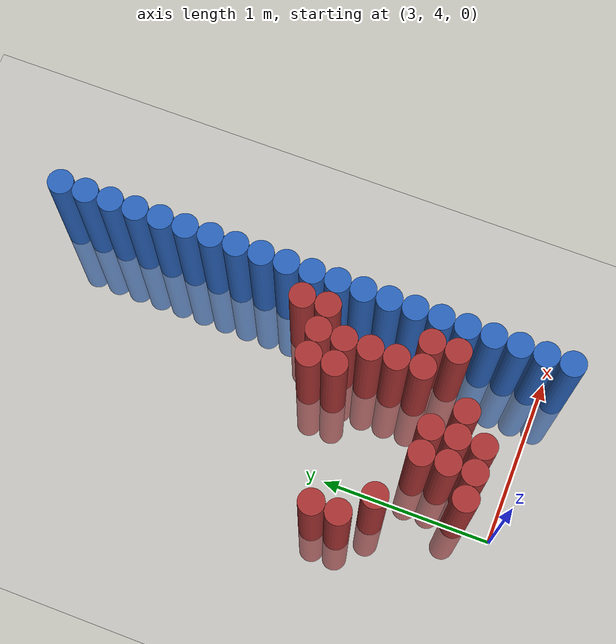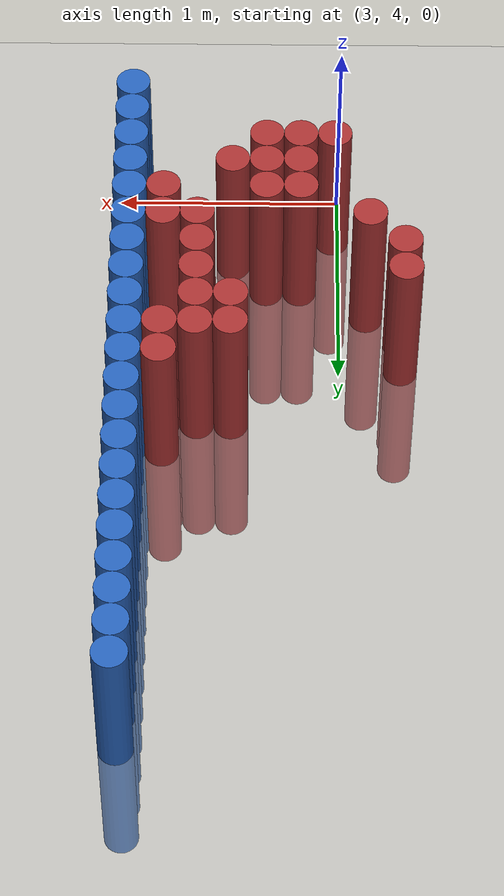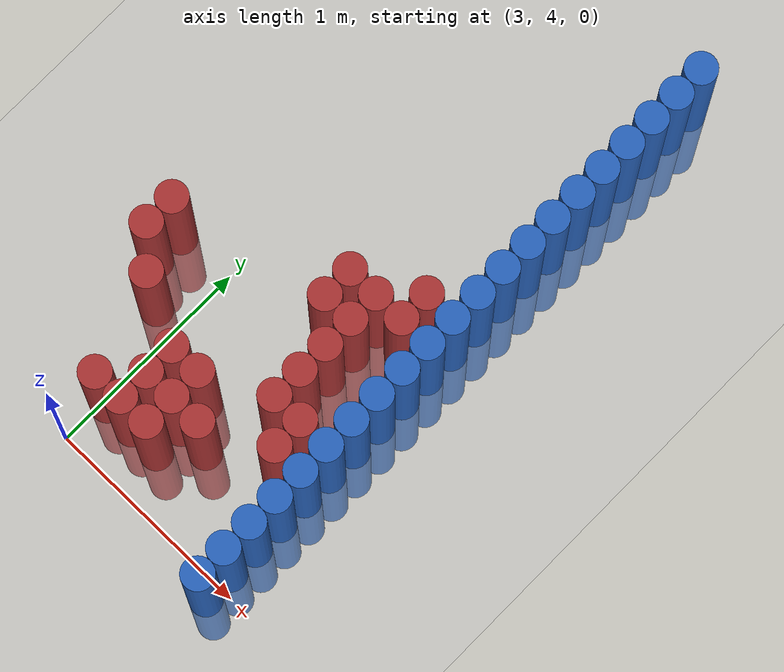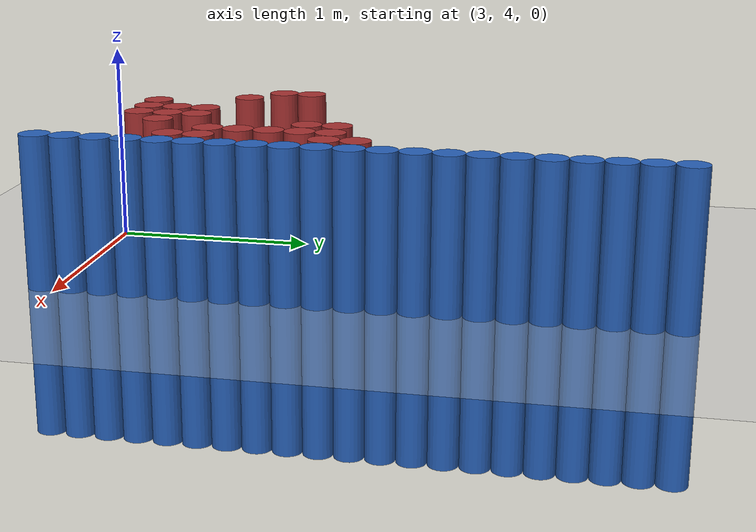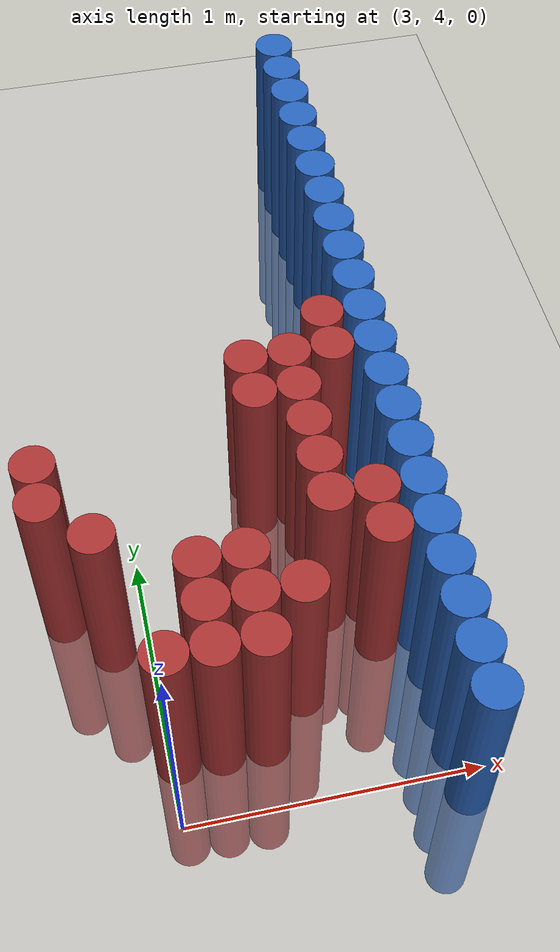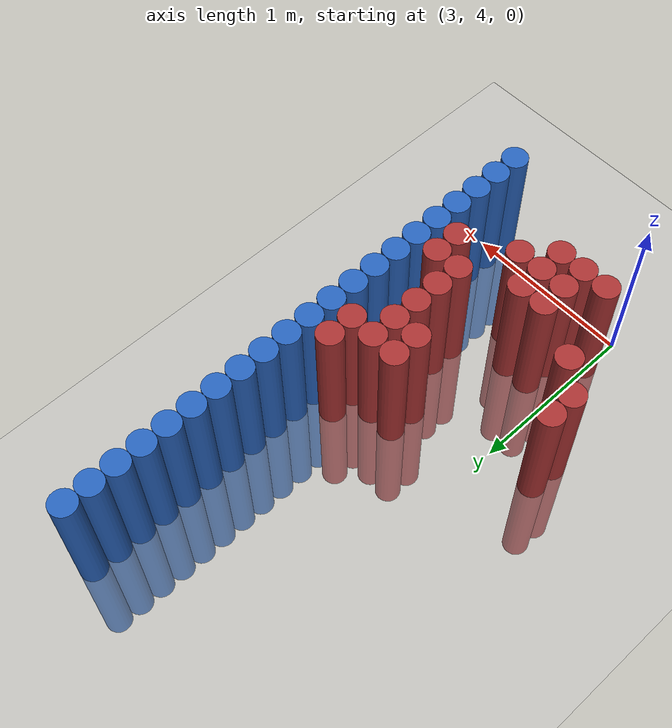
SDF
<sdf version="1.6">
 <world name="default">
  <model name="ground_plane">
   <static>1</static>
   <link name="link">
    <collision name="collision">
     <geometry><plane><normal>0 0 1</normal><size>100 100</size></plane></geometry>
     <surface><friction><ode><mu>100</mu><mu2>50</mu2></ode></friction></surface>
    </collision>
    <visual name="visual">
     <cast_shadows>0</cast_shadows>
     <geometry><plane><normal>0 0 1</normal><size>100 100</size></plane></geometry>
     <material>
      <script><uri>file://media/materials/scripts/gazebo.material</uri><name>Gazebo/Grey</name></script>
     </material>
    </visual>
   </link>
  </model>
  <model name="unit_cylinder_166">
   <static>1</static>
   <pose>3.925000 3.925000 0.000000 0.000000 0.000000 0.000000</pose>
   <link name="link">
    <inertial>
     <mass>1</mass>
     <inertia><ixx>0.145833</ixx><ixy>0</ixy><ixz>0</ixz><iyy>0.145833</iyy><iyz>0</iyz><izz>0.125</izz></inertia>
    </inertial>
    <collision name="collision">
     <geometry><cylinder><radius>0.075000</radius><length>1.5</length></cylinder></geometry>
    </collision>
    <visual name="visual">
     <geometry><cylinder><radius>0.075000</radius><length>1.5</length></cylinder></geometry>
     <material>
      <ambient>0.152000 0.379000 0.720000 1</ambient>
      <diffuse>0.152000 0.379000 0.720000 1</diffuse>
     </material>
     <material>
      <script><name>Gazebo/Grey</name><uri>file://media/materials/scripts/gazebo.material</uri></script>
     </material>
    </visual>
   </link>
  </model>
  <model name="unit_cylinder_168">
   <static>1</static>
   <pose>3.925000 4.075000 0.000000 0.000000 0.000000 0.000000</pose>
   <link name="link">
    <inertial>
     <mass>1</mass>
     <inertia><ixx>0.145833</ixx><ixy>0</ixy><ixz>0</ixz><iyy>0.145833</iyy><iyz>0</iyz><izz>0.125</izz></inertia>
    </inertial>
    <collision name="collision">
     <geometry><cylinder><radius>0.075000</radius><length>1.5</length></cylinder></geometry>
    </collision>
    <visual name="visual">
     <geometry><cylinder><radius>0.075000</radius><length>1.5</length></cylinder></geometry>
     <material>
      <ambient>0.152000 0.379000 0.720000 1</ambient>
      <diffuse>0.152000 0.379000 0.720000 1</diffuse>
     </material>
     <material>
      <script><name>Gazebo/Grey</name><uri>file://media/materials/scripts/gazebo.material</uri></script>
     </material>
    </visual>
   </link>
  </model>
  <model name="unit_cylinder_170">
   <static>1</static>
   <pose>3.925000 4.225000 0.000000 0.000000 0.000000 0.000000</pose>
   <link name="link">
    <inertial>
     <mass>1</mass>
     <inertia><ixx>0.145833</ixx><ixy>0</ixy><ixz>0</ixz><iyy>0.145833</iyy><iyz>0</iyz><izz>0.125</izz></inertia>
    </inertial>
    <collision name="collision">
     <geometry><cylinder><radius>0.075000</radius><length>1.5</length></cylinder></geometry>
    </collision>
    <visual name="visual">
     <geometry><cylinder><radius>0.075000</radius><length>1.5</length></cylinder></geometry>
     <material>
      <ambient>0.152000 0.379000 0.720000 1</ambient>
      <diffuse>0.152000 0.379000 0.720000 1</diffuse>
     </material>
     <material>
      <script><name>Gazebo/Grey</name><uri>file://media/materials/scripts/gazebo.material</uri></script>
     </material>
    </visual>
   </link>
  </model>
  <model name="unit_cylinder_172">
   <static>1</static>
   <pose>3.925000 4.375000 0.000000 0.000000 0.000000 0.000000</pose>
   <link name="link">
    <inertial>
     <mass>1</mass>
     <inertia><ixx>0.145833</ixx><ixy>0</ixy><ixz>0</ixz><iyy>0.145833</iyy><iyz>0</iyz><izz>0.125</izz></inertia>
    </inertial>
    <collision name="collision">
     <geometry><cylinder><radius>0.075000</radius><length>1.5</length></cylinder></geometry>
    </collision>
    <visual name="visual">
     <geometry><cylinder><radius>0.075000</radius><length>1.5</length></cylinder></geometry>
     <material>
      <ambient>0.152000 0.379000 0.720000 1</ambient>
      <diffuse>0.152000 0.379000 0.720000 1</diffuse>
     </material>
     <material>
      <script><name>Gazebo/Grey</name><uri>file://media/materials/scripts/gazebo.material</uri></script>
     </material>
    </visual>
   </link>
  </model>
  <model name="unit_cylinder_174">
   <static>1</static>
   <pose>3.925000 4.525000 0.000000 0.000000 0.000000 0.000000</pose>
   <link name="link">
    <inertial>
     <mass>1</mass>
     <inertia><ixx>0.145833</ixx><ixy>0</ixy><ixz>0</ixz><iyy>0.145833</iyy><iyz>0</iyz><izz>0.125</izz></inertia>
    </inertial>
    <collision name="collision">
     <geometry><cylinder><radius>0.075000</radius><length>1.5</length></cylinder></geometry>
    </collision>
    <visual name="visual">
     <geometry><cylinder><radius>0.075000</radius><length>1.5</length></cylinder></geometry>
     <material>
      <ambient>0.152000 0.379000 0.720000 1</ambient>
      <diffuse>0.152000 0.379000 0.720000 1</diffuse>
     </material>
     <material>
      <script><name>Gazebo/Grey</name><uri>file://media/materials/scripts/gazebo.material</uri></script>
     </material>
    </visual>
   </link>
  </model>
  <model name="unit_cylinder_176">
   <static>1</static>
   <pose>3.925000 4.675000 0.000000 0.000000 0.000000 0.000000</pose>
   <link name="link">
    <inertial>
     <mass>1</mass>
     <inertia><ixx>0.145833</ixx><ixy>0</ixy><ixz>0</ixz><iyy>0.145833</iyy><iyz>0</iyz><izz>0.125</izz></inertia>
    </inertial>
    <collision name="collision">
     <geometry><cylinder><radius>0.075000</radius><length>1.5</length></cylinder></geometry>
    </collision>
    <visual name="visual">
     <geometry><cylinder><radius>0.075000</radius><length>1.5</length></cylinder></geometry>
     <material>
      <ambient>0.152000 0.379000 0.720000 1</ambient>
      <diffuse>0.152000 0.379000 0.720000 1</diffuse>
     </material>
     <material>
      <script><name>Gazebo/Grey</name><uri>file://media/materials/scripts/gazebo.material</uri></script>
     </material>
    </visual>
   </link>
  </model>
  <model name="unit_cylinder_178">
   <static>1</static>
   <pose>3.925000 4.825000 0.000000 0.000000 0.000000 0.000000</pose>
   <link name="link">
    <inertial>
     <mass>1</mass>
     <inertia><ixx>0.145833</ixx><ixy>0</ixy><ixz>0</ixz><iyy>0.145833</iyy><iyz>0</iyz><izz>0.125</izz></inertia>
    </inertial>
    <collision name="collision">
     <geometry><cylinder><radius>0.075000</radius><length>1.5</length></cylinder></geometry>
    </collision>
    <visual name="visual">
     <geometry><cylinder><radius>0.075000</radius><length>1.5</length></cylinder></geometry>
     <material>
      <ambient>0.152000 0.379000 0.720000 1</ambient>
      <diffuse>0.152000 0.379000 0.720000 1</diffuse>
     </material>
     <material>
      <script><name>Gazebo/Grey</name><uri>file://media/materials/scripts/gazebo.material</uri></script>
     </material>
    </visual>
   </link>
  </model>
  <model name="unit_cylinder_180">
   <static>1</static>
   <pose>3.925000 4.975000 0.000000 0.000000 0.000000 0.000000</pose>
   <link name="link">
    <inertial>
     <mass>1</mass>
     <inertia><ixx>0.145833</ixx><ixy>0</ixy><ixz>0</ixz><iyy>0.145833</iyy><iyz>0</iyz><izz>0.125</izz></inertia>
    </inertial>
    <collision name="collision">
     <geometry><cylinder><radius>0.075000</radius><length>1.5</length></cylinder></geometry>
    </collision>
    <visual name="visual">
     <geometry><cylinder><radius>0.075000</radius><length>1.5</length></cylinder></geometry>
     <material>
      <ambient>0.152000 0.379000 0.720000 1</ambient>
      <diffuse>0.152000 0.379000 0.720000 1</diffuse>
     </material>
     <material>
      <script><name>Gazebo/Grey</name><uri>file://media/materials/scripts/gazebo.material</uri></script>
     </material>
    </visual>
   </link>
  </model>
  <model name="unit_cylinder_182">
   <static>1</static>
   <pose>3.925000 5.125000 0.000000 0.000000 0.000000 0.000000</pose>
   <link name="link">
    <inertial>
     <mass>1</mass>
     <inertia><ixx>0.145833</ixx><ixy>0</ixy><ixz>0</ixz><iyy>0.145833</iyy><iyz>0</iyz><izz>0.125</izz></inertia>
    </inertial>
    <collision name="collision">
     <geometry><cylinder><radius>0.075000</radius><length>1.5</length></cylinder></geometry>
    </collision>
    <visual name="visual">
     <geometry><cylinder><radius>0.075000</radius><length>1.5</length></cylinder></geometry>
     <material>
      <ambient>0.152000 0.379000 0.720000 1</ambient>
      <diffuse>0.152000 0.379000 0.720000 1</diffuse>
     </material>
     <material>
      <script><name>Gazebo/Grey</name><uri>file://media/materials/scripts/gazebo.material</uri></script>
     </material>
    </visual>
   </link>
  </model>
  <model name="unit_cylinder_184">
   <static>1</static>
   <pose>3.925000 5.275000 0.000000 0.000000 0.000000 0.000000</pose>
   <link name="link">
    <inertial>
     <mass>1</mass>
     <inertia><ixx>0.145833</ixx><ixy>0</ixy><ixz>0</ixz><iyy>0.145833</iyy><iyz>0</iyz><izz>0.125</izz></inertia>
    </inertial>
    <collision name="collision">
     <geometry><cylinder><radius>0.075000</radius><length>1.5</length></cylinder></geometry>
    </collision>
    <visual name="visual">
     <geometry><cylinder><radius>0.075000</radius><length>1.5</length></cylinder></geometry>
     <material>
      <ambient>0.152000 0.379000 0.720000 1</ambient>
      <diffuse>0.152000 0.379000 0.720000 1</diffuse>
     </material>
     <material>
      <script><name>Gazebo/Grey</name><uri>file://media/materials/scripts/gazebo.material</uri></script>
     </material>
    </visual>
   </link>
  </model>
  <model name="unit_cylinder_186">
   <static>1</static>
   <pose>3.925000 5.425000 0.000000 0.000000 0.000000 0.000000</pose>
   <link name="link">
    <inertial>
     <mass>1</mass>
     <inertia><ixx>0.145833</ixx><ixy>0</ixy><ixz>0</ixz><iyy>0.145833</iyy><iyz>0</iyz><izz>0.125</izz></inertia>
    </inertial>
    <collision name="collision">
     <geometry><cylinder><radius>0.075000</radius><length>1.5</length></cylinder></geometry>
    </collision>
    <visual name="visual">
     <geometry><cylinder><radius>0.075000</radius><length>1.5</length></cylinder></geometry>
     <material>
      <ambient>0.152000 0.379000 0.720000 1</ambient>
      <diffuse>0.152000 0.379000 0.720000 1</diffuse>
     </material>
     <material>
      <script><name>Gazebo/Grey</name><uri>file://media/materials/scripts/gazebo.material</uri></script>
     </material>
    </visual>
   </link>
  </model>
  <model name="unit_cylinder_188">
   <static>1</static>
   <pose>3.925000 5.575000 0.000000 0.000000 0.000000 0.000000</pose>
   <link name="link">
    <inertial>
     <mass>1</mass>
     <inertia><ixx>0.145833</ixx><ixy>0</ixy><ixz>0</ixz><iyy>0.145833</iyy><iyz>0</iyz><izz>0.125</izz></inertia>
    </inertial>
    <collision name="collision">
     <geometry><cylinder><radius>0.075000</radius><length>1.5</length></cylinder></geometry>
    </collision>
    <visual name="visual">
     <geometry><cylinder><radius>0.075000</radius><length>1.5</length></cylinder></geometry>
     <material>
      <ambient>0.152000 0.379000 0.720000 1</ambient>
      <diffuse>0.152000 0.379000 0.720000 1</diffuse>
     </material>
     <material>
      <script><name>Gazebo/Grey</name><uri>file://media/materials/scripts/gazebo.material</uri></script>
     </material>
    </visual>
   </link>
  </model>
  <model name="unit_cylinder_190">
   <static>1</static>
   <pose>3.925000 5.725000 0.000000 0.000000 0.000000 0.000000</pose>
   <link name="link">
    <inertial>
     <mass>1</mass>
     <inertia><ixx>0.145833</ixx><ixy>0</ixy><ixz>0</ixz><iyy>0.145833</iyy><iyz>0</iyz><izz>0.125</izz></inertia>
    </inertial>
    <collision name="collision">
     <geometry><cylinder><radius>0.075000</radius><length>1.5</length></cylinder></geometry>
    </collision>
    <visual name="visual">
     <geometry><cylinder><radius>0.075000</radius><length>1.5</length></cylinder></geometry>
     <material>
      <ambient>0.152000 0.379000 0.720000 1</ambient>
      <diffuse>0.152000 0.379000 0.720000 1</diffuse>
     </material>
     <material>
      <script><name>Gazebo/Grey</name><uri>file://media/materials/scripts/gazebo.material</uri></script>
     </material>
    </visual>
   </link>
  </model>
  <model name="unit_cylinder_192">
   <static>1</static>
   <pose>3.925000 5.875000 0.000000 0.000000 0.000000 0.000000</pose>
   <link name="link">
    <inertial>
     <mass>1</mass>
     <inertia><ixx>0.145833</ixx><ixy>0</ixy><ixz>0</ixz><iyy>0.145833</iyy><iyz>0</iyz><izz>0.125</izz></inertia>
    </inertial>
    <collision name="collision">
     <geometry><cylinder><radius>0.075000</radius><length>1.5</length></cylinder></geometry>
    </collision>
    <visual name="visual">
     <geometry><cylinder><radius>0.075000</radius><length>1.5</length></cylinder></geometry>
     <material>
      <ambient>0.152000 0.379000 0.720000 1</ambient>
      <diffuse>0.152000 0.379000 0.720000 1</diffuse>
     </material>
     <material>
      <script><name>Gazebo/Grey</name><uri>file://media/materials/scripts/gazebo.material</uri></script>
     </material>
    </visual>
   </link>
  </model>
  <model name="unit_cylinder_194">
   <static>1</static>
   <pose>3.925000 6.025000 0.000000 0.000000 0.000000 0.000000</pose>
   <link name="link">
    <inertial>
     <mass>1</mass>
     <inertia><ixx>0.145833</ixx><ixy>0</ixy><ixz>0</ixz><iyy>0.145833</iyy><iyz>0</iyz><izz>0.125</izz></inertia>
    </inertial>
    <collision name="collision">
     <geometry><cylinder><radius>0.075000</radius><length>1.5</length></cylinder></geometry>
    </collision>
    <visual name="visual">
     <geometry><cylinder><radius>0.075000</radius><length>1.5</length></cylinder></geometry>
     <material>
      <ambient>0.152000 0.379000 0.720000 1</ambient>
      <diffuse>0.152000 0.379000 0.720000 1</diffuse>
     </material>
     <material>
      <script><name>Gazebo/Grey</name><uri>file://media/materials/scripts/gazebo.material</uri></script>
     </material>
    </visual>
   </link>
  </model>
  <model name="unit_cylinder_196">
   <static>1</static>
   <pose>3.925000 6.175000 0.000000 0.000000 0.000000 0.000000</pose>
   <link name="link">
    <inertial>
     <mass>1</mass>
     <inertia><ixx>0.145833</ixx><ixy>0</ixy><ixz>0</ixz><iyy>0.145833</iyy><iyz>0</iyz><izz>0.125</izz></inertia>
    </inertial>
    <collision name="collision">
     <geometry><cylinder><radius>0.075000</radius><length>1.5</length></cylinder></geometry>
    </collision>
    <visual name="visual">
     <geometry><cylinder><radius>0.075000</radius><length>1.5</length></cylinder></geometry>
     <material>
      <ambient>0.152000 0.379000 0.720000 1</ambient>
      <diffuse>0.152000 0.379000 0.720000 1</diffuse>
     </material>
     <material>
      <script><name>Gazebo/Grey</name><uri>file://media/materials/scripts/gazebo.material</uri></script>
     </material>
    </visual>
   </link>
  </model>
  <model name="unit_cylinder_198">
   <static>1</static>
   <pose>3.925000 6.325000 0.000000 0.000000 0.000000 0.000000</pose>
   <link name="link">
    <inertial>
     <mass>1</mass>
     <inertia><ixx>0.145833</ixx><ixy>0</ixy><ixz>0</ixz><iyy>0.145833</iyy><iyz>0</iyz><izz>0.125</izz></inertia>
    </inertial>
    <collision name="collision">
     <geometry><cylinder><radius>0.075000</radius><length>1.5</length></cylinder></geometry>
    </collision>
    <visual name="visual">
     <geometry><cylinder><radius>0.075000</radius><length>1.5</length></cylinder></geometry>
     <material>
      <ambient>0.152000 0.379000 0.720000 1</ambient>
      <diffuse>0.152000 0.379000 0.720000 1</diffuse>
     </material>
     <material>
      <script><name>Gazebo/Grey</name><uri>file://media/materials/scripts/gazebo.material</uri></script>
     </material>
    </visual>
   </link>
  </model>
  <model name="unit_cylinder_200">
   <static>1</static>
   <pose>3.925000 6.475000 0.000000 0.000000 0.000000 0.000000</pose>
   <link name="link">
    <inertial>
     <mass>1</mass>
     <inertia><ixx>0.145833</ixx><ixy>0</ixy><ixz>0</ixz><iyy>0.145833</iyy><iyz>0</iyz><izz>0.125</izz></inertia>
    </inertial>
    <collision name="collision">
     <geometry><cylinder><radius>0.075000</radius><length>1.5</length></cylinder></geometry>
    </collision>
    <visual name="visual">
     <geometry><cylinder><radius>0.075000</radius><length>1.5</length></cylinder></geometry>
     <material>
      <ambient>0.152000 0.379000 0.720000 1</ambient>
      <diffuse>0.152000 0.379000 0.720000 1</diffuse>
     </material>
     <material>
      <script><name>Gazebo/Grey</name><uri>file://media/materials/scripts/gazebo.material</uri></script>
     </material>
    </visual>
   </link>
  </model>
  <model name="unit_cylinder_202">
   <static>1</static>
   <pose>3.925000 6.625000 0.000000 0.000000 0.000000 0.000000</pose>
   <link name="link">
    <inertial>
     <mass>1</mass>
     <inertia><ixx>0.145833</ixx><ixy>0</ixy><ixz>0</ixz><iyy>0.145833</iyy><iyz>0</iyz><izz>0.125</izz></inertia>
    </inertial>
    <collision name="collision">
     <geometry><cylinder><radius>0.075000</radius><length>1.5</length></cylinder></geometry>
    </collision>
    <visual name="visual">
     <geometry><cylinder><radius>0.075000</radius><length>1.5</length></cylinder></geometry>
     <material>
      <ambient>0.152000 0.379000 0.720000 1</ambient>
      <diffuse>0.152000 0.379000 0.720000 1</diffuse>
     </material>
     <material>
      <script><name>Gazebo/Grey</name><uri>file://media/materials/scripts/gazebo.material</uri></script>
     </material>
    </visual>
   </link>
  </model>
  <model name="unit_cylinder_204">
   <static>1</static>
   <pose>3.925000 6.775000 0.000000 0.000000 0.000000 0.000000</pose>
   <link name="link">
    <inertial>
     <mass>1</mass>
     <inertia><ixx>0.145833</ixx><ixy>0</ixy><ixz>0</ixz><iyy>0.145833</iyy><iyz>0</iyz><izz>0.125</izz></inertia>
    </inertial>
    <collision name="collision">
     <geometry><cylinder><radius>0.075000</radius><length>1.5</length></cylinder></geometry>
    </collision>
    <visual name="visual">
     <geometry><cylinder><radius>0.075000</radius><length>1.5</length></cylinder></geometry>
     <material>
      <ambient>0.152000 0.379000 0.720000 1</ambient>
      <diffuse>0.152000 0.379000 0.720000 1</diffuse>
     </material>
     <material>
      <script><name>Gazebo/Grey</name><uri>file://media/materials/scripts/gazebo.material</uri></script>
     </material>
    </visual>
   </link>
  </model>
  <model name="unit_cylinder_206">
   <static>1</static>
   <pose>3.925000 6.925000 0.000000 0.000000 0.000000 0.000000</pose>
   <link name="link">
    <inertial>
     <mass>1</mass>
     <inertia><ixx>0.145833</ixx><ixy>0</ixy><ixz>0</ixz><iyy>0.145833</iyy><iyz>0</iyz><izz>0.125</izz></inertia>
    </inertial>
    <collision name="collision">
     <geometry><cylinder><radius>0.075000</radius><length>1.5</length></cylinder></geometry>
    </collision>
    <visual name="visual">
     <geometry><cylinder><radius>0.075000</radius><length>1.5</length></cylinder></geometry>
     <material>
      <ambient>0.152000 0.379000 0.720000 1</ambient>
      <diffuse>0.152000 0.379000 0.720000 1</diffuse>
     </material>
     <material>
      <script><name>Gazebo/Grey</name><uri>file://media/materials/scripts/gazebo.material</uri></script>
     </material>
    </visual>
   </link>
  </model>
  <model name="unit_cylinder_431">
   <static>1</static>
   <pose>2.725000 4.825000 0.000000 0.000000 0.000000 0.000000</pose>
   <link name="link">
    <inertial>
     <mass>1</mass>
     <inertia><ixx>0.145833</ixx><ixy>0</ixy><ixz>0</ixz><iyy>0.145833</iyy><iyz>0</iyz><izz>0.125</izz></inertia>
    </inertial>
    <collision name="collision">
     <geometry><cylinder><radius>0.075000</radius><length>1.5</length></cylinder></geometry>
    </collision>
    <visual name="visual">
     <geometry><cylinder><radius>0.075000</radius><length>1.5</length></cylinder></geometry>
     <material>
      <ambient>0.648000 0.192000 0.192000 1</ambient>
      <diffuse>0.648000 0.192000 0.192000 1</diffuse>
     </material>
     <material>
      <script><name>Gazebo/Grey</name><uri>file://media/materials/scripts/gazebo.material</uri></script>
     </material>
    </visual>
   </link>
  </model>
  <model name="unit_cylinder_432">
   <static>1</static>
   <pose>2.725000 4.975000 0.000000 0.000000 0.000000 0.000000</pose>
   <link name="link">
    <inertial>
     <mass>1</mass>
     <inertia><ixx>0.145833</ixx><ixy>0</ixy><ixz>0</ixz><iyy>0.145833</iyy><iyz>0</iyz><izz>0.125</izz></inertia>
    </inertial>
    <collision name="collision">
     <geometry><cylinder><radius>0.075000</radius><length>1.5</length></cylinder></geometry>
    </collision>
    <visual name="visual">
     <geometry><cylinder><radius>0.075000</radius><length>1.5</length></cylinder></geometry>
     <material>
      <ambient>0.648000 0.192000 0.192000 1</ambient>
      <diffuse>0.648000 0.192000 0.192000 1</diffuse>
     </material>
     <material>
      <script><name>Gazebo/Grey</name><uri>file://media/materials/scripts/gazebo.material</uri></script>
     </material>
    </visual>
   </link>
  </model>
  <model name="unit_cylinder_434">
   <static>1</static>
   <pose>2.875000 4.675000 0.000000 0.000000 0.000000 0.000000</pose>
   <link name="link">
    <inertial>
     <mass>1</mass>
     <inertia><ixx>0.145833</ixx><ixy>0</ixy><ixz>0</ixz><iyy>0.145833</iyy><iyz>0</iyz><izz>0.125</izz></inertia>
    </inertial>
    <collision name="collision">
     <geometry><cylinder><radius>0.075000</radius><length>1.5</length></cylinder></geometry>
    </collision>
    <visual name="visual">
     <geometry><cylinder><radius>0.075000</radius><length>1.5</length></cylinder></geometry>
     <material>
      <ambient>0.648000 0.192000 0.192000 1</ambient>
      <diffuse>0.648000 0.192000 0.192000 1</diffuse>
     </material>
     <material>
      <script><name>Gazebo/Grey</name><uri>file://media/materials/scripts/gazebo.material</uri></script>
     </material>
    </visual>
   </link>
  </model>
  <model name="unit_cylinder_437">
   <static>1</static>
   <pose>3.025000 4.225000 0.000000 0.000000 0.000000 0.000000</pose>
   <link name="link">
    <inertial>
     <mass>1</mass>
     <inertia><ixx>0.145833</ixx><ixy>0</ixy><ixz>0</ixz><iyy>0.145833</iyy><iyz>0</iyz><izz>0.125</izz></inertia>
    </inertial>
    <collision name="collision">
     <geometry><cylinder><radius>0.075000</radius><length>1.5</length></cylinder></geometry>
    </collision>
    <visual name="visual">
     <geometry><cylinder><radius>0.075000</radius><length>1.5</length></cylinder></geometry>
     <material>
      <ambient>0.648000 0.192000 0.192000 1</ambient>
      <diffuse>0.648000 0.192000 0.192000 1</diffuse>
     </material>
     <material>
      <script><name>Gazebo/Grey</name><uri>file://media/materials/scripts/gazebo.material</uri></script>
     </material>
    </visual>
   </link>
  </model>
  <model name="unit_cylinder_438">
   <static>1</static>
   <pose>3.175000 4.225000 0.000000 0.000000 0.000000 0.000000</pose>
   <link name="link">
    <inertial>
     <mass>1</mass>
     <inertia><ixx>0.145833</ixx><ixy>0</ixy><ixz>0</ixz><iyy>0.145833</iyy><iyz>0</iyz><izz>0.125</izz></inertia>
    </inertial>
    <collision name="collision">
     <geometry><cylinder><radius>0.075000</radius><length>1.5</length></cylinder></geometry>
    </collision>
    <visual name="visual">
     <geometry><cylinder><radius>0.075000</radius><length>1.5</length></cylinder></geometry>
     <material>
      <ambient>0.648000 0.192000 0.192000 1</ambient>
      <diffuse>0.648000 0.192000 0.192000 1</diffuse>
     </material>
     <material>
      <script><name>Gazebo/Grey</name><uri>file://media/materials/scripts/gazebo.material</uri></script>
     </material>
    </visual>
   </link>
  </model>
  <model name="unit_cylinder_439">
   <static>1</static>
   <pose>3.175000 4.375000 0.000000 0.000000 0.000000 0.000000</pose>
   <link name="link">
    <inertial>
     <mass>1</mass>
     <inertia><ixx>0.145833</ixx><ixy>0</ixy><ixz>0</ixz><iyy>0.145833</iyy><iyz>0</iyz><izz>0.125</izz></inertia>
    </inertial>
    <collision name="collision">
     <geometry><cylinder><radius>0.075000</radius><length>1.5</length></cylinder></geometry>
    </collision>
    <visual name="visual">
     <geometry><cylinder><radius>0.075000</radius><length>1.5</length></cylinder></geometry>
     <material>
      <ambient>0.648000 0.192000 0.192000 1</ambient>
      <diffuse>0.648000 0.192000 0.192000 1</diffuse>
     </material>
     <material>
      <script><name>Gazebo/Grey</name><uri>file://media/materials/scripts/gazebo.material</uri></script>
     </material>
    </visual>
   </link>
  </model>
  <model name="unit_cylinder_440">
   <static>1</static>
   <pose>3.175000 4.525000 0.000000 0.000000 0.000000 0.000000</pose>
   <link name="link">
    <inertial>
     <mass>1</mass>
     <inertia><ixx>0.145833</ixx><ixy>0</ixy><ixz>0</ixz><iyy>0.145833</iyy><iyz>0</iyz><izz>0.125</izz></inertia>
    </inertial>
    <collision name="collision">
     <geometry><cylinder><radius>0.075000</radius><length>1.5</length></cylinder></geometry>
    </collision>
    <visual name="visual">
     <geometry><cylinder><radius>0.075000</radius><length>1.5</length></cylinder></geometry>
     <material>
      <ambient>0.648000 0.192000 0.192000 1</ambient>
      <diffuse>0.648000 0.192000 0.192000 1</diffuse>
     </material>
     <material>
      <script><name>Gazebo/Grey</name><uri>file://media/materials/scripts/gazebo.material</uri></script>
     </material>
    </visual>
   </link>
  </model>
  <model name="unit_cylinder_443">
   <static>1</static>
   <pose>3.325000 4.225000 0.000000 0.000000 0.000000 0.000000</pose>
   <link name="link">
    <inertial>
     <mass>1</mass>
     <inertia><ixx>0.145833</ixx><ixy>0</ixy><ixz>0</ixz><iyy>0.145833</iyy><iyz>0</iyz><izz>0.125</izz></inertia>
    </inertial>
    <collision name="collision">
     <geometry><cylinder><radius>0.075000</radius><length>1.5</length></cylinder></geometry>
    </collision>
    <visual name="visual">
     <geometry><cylinder><radius>0.075000</radius><length>1.5</length></cylinder></geometry>
     <material>
      <ambient>0.648000 0.192000 0.192000 1</ambient>
      <diffuse>0.648000 0.192000 0.192000 1</diffuse>
     </material>
     <material>
      <script><name>Gazebo/Grey</name><uri>file://media/materials/scripts/gazebo.material</uri></script>
     </material>
    </visual>
   </link>
  </model>
  <model name="unit_cylinder_444">
   <static>1</static>
   <pose>3.325000 4.375000 0.000000 0.000000 0.000000 0.000000</pose>
   <link name="link">
    <inertial>
     <mass>1</mass>
     <inertia><ixx>0.145833</ixx><ixy>0</ixy><ixz>0</ixz><iyy>0.145833</iyy><iyz>0</iyz><izz>0.125</izz></inertia>
    </inertial>
    <collision name="collision">
     <geometry><cylinder><radius>0.075000</radius><length>1.5</length></cylinder></geometry>
    </collision>
    <visual name="visual">
     <geometry><cylinder><radius>0.075000</radius><length>1.5</length></cylinder></geometry>
     <material>
      <ambient>0.648000 0.192000 0.192000 1</ambient>
      <diffuse>0.648000 0.192000 0.192000 1</diffuse>
     </material>
     <material>
      <script><name>Gazebo/Grey</name><uri>file://media/materials/scripts/gazebo.material</uri></script>
     </material>
    </visual>
   </link>
  </model>
  <model name="unit_cylinder_445">
   <static>1</static>
   <pose>3.325000 4.525000 0.000000 0.000000 0.000000 0.000000</pose>
   <link name="link">
    <inertial>
     <mass>1</mass>
     <inertia><ixx>0.145833</ixx><ixy>0</ixy><ixz>0</ixz><iyy>0.145833</iyy><iyz>0</iyz><izz>0.125</izz></inertia>
    </inertial>
    <collision name="collision">
     <geometry><cylinder><radius>0.075000</radius><length>1.5</length></cylinder></geometry>
    </collision>
    <visual name="visual">
     <geometry><cylinder><radius>0.075000</radius><length>1.5</length></cylinder></geometry>
     <material>
      <ambient>0.648000 0.192000 0.192000 1</ambient>
      <diffuse>0.648000 0.192000 0.192000 1</diffuse>
     </material>
     <material>
      <script><name>Gazebo/Grey</name><uri>file://media/materials/scripts/gazebo.material</uri></script>
     </material>
    </visual>
   </link>
  </model>
  <model name="unit_cylinder_450">
   <static>1</static>
   <pose>3.475000 4.375000 0.000000 0.000000 0.000000 0.000000</pose>
   <link name="link">
    <inertial>
     <mass>1</mass>
     <inertia><ixx>0.145833</ixx><ixy>0</ixy><ixz>0</ixz><iyy>0.145833</iyy><iyz>0</iyz><izz>0.125</izz></inertia>
    </inertial>
    <collision name="collision">
     <geometry><cylinder><radius>0.075000</radius><length>1.5</length></cylinder></geometry>
    </collision>
    <visual name="visual">
     <geometry><cylinder><radius>0.075000</radius><length>1.5</length></cylinder></geometry>
     <material>
      <ambient>0.648000 0.192000 0.192000 1</ambient>
      <diffuse>0.648000 0.192000 0.192000 1</diffuse>
     </material>
     <material>
      <script><name>Gazebo/Grey</name><uri>file://media/materials/scripts/gazebo.material</uri></script>
     </material>
    </visual>
   </link>
  </model>
  <model name="unit_cylinder_451">
   <static>1</static>
   <pose>3.475000 5.125000 0.000000 0.000000 0.000000 0.000000</pose>
   <link name="link">
    <inertial>
     <mass>1</mass>
     <inertia><ixx>0.145833</ixx><ixy>0</ixy><ixz>0</ixz><iyy>0.145833</iyy><iyz>0</iyz><izz>0.125</izz></inertia>
    </inertial>
    <collision name="collision">
     <geometry><cylinder><radius>0.075000</radius><length>1.5</length></cylinder></geometry>
    </collision>
    <visual name="visual">
     <geometry><cylinder><radius>0.075000</radius><length>1.5</length></cylinder></geometry>
     <material>
      <ambient>0.648000 0.192000 0.192000 1</ambient>
      <diffuse>0.648000 0.192000 0.192000 1</diffuse>
     </material>
     <material>
      <script><name>Gazebo/Grey</name><uri>file://media/materials/scripts/gazebo.material</uri></script>
     </material>
    </visual>
   </link>
  </model>
  <model name="unit_cylinder_452">
   <static>1</static>
   <pose>3.475000 5.275000 0.000000 0.000000 0.000000 0.000000</pose>
   <link name="link">
    <inertial>
     <mass>1</mass>
     <inertia><ixx>0.145833</ixx><ixy>0</ixy><ixz>0</ixz><iyy>0.145833</iyy><iyz>0</iyz><izz>0.125</izz></inertia>
    </inertial>
    <collision name="collision">
     <geometry><cylinder><radius>0.075000</radius><length>1.5</length></cylinder></geometry>
    </collision>
    <visual name="visual">
     <geometry><cylinder><radius>0.075000</radius><length>1.5</length></cylinder></geometry>
     <material>
      <ambient>0.648000 0.192000 0.192000 1</ambient>
      <diffuse>0.648000 0.192000 0.192000 1</diffuse>
     </material>
     <material>
      <script><name>Gazebo/Grey</name><uri>file://media/materials/scripts/gazebo.material</uri></script>
     </material>
    </visual>
   </link>
  </model>
  <model name="unit_cylinder_464">
   <static>1</static>
   <pose>3.625000 4.675000 0.000000 0.000000 0.000000 0.000000</pose>
   <link name="link">
    <inertial>
     <mass>1</mass>
     <inertia><ixx>0.145833</ixx><ixy>0</ixy><ixz>0</ixz><iyy>0.145833</iyy><iyz>0</iyz><izz>0.125</izz></inertia>
    </inertial>
    <collision name="collision">
     <geometry><cylinder><radius>0.075000</radius><length>1.5</length></cylinder></geometry>
    </collision>
    <visual name="visual">
     <geometry><cylinder><radius>0.075000</radius><length>1.5</length></cylinder></geometry>
     <material>
      <ambient>0.648000 0.192000 0.192000 1</ambient>
      <diffuse>0.648000 0.192000 0.192000 1</diffuse>
     </material>
     <material>
      <script><name>Gazebo/Grey</name><uri>file://media/materials/scripts/gazebo.material</uri></script>
     </material>
    </visual>
   </link>
  </model>
  <model name="unit_cylinder_465">
   <static>1</static>
   <pose>3.625000 4.825000 0.000000 0.000000 0.000000 0.000000</pose>
   <link name="link">
    <inertial>
     <mass>1</mass>
     <inertia><ixx>0.145833</ixx><ixy>0</ixy><ixz>0</ixz><iyy>0.145833</iyy><iyz>0</iyz><izz>0.125</izz></inertia>
    </inertial>
    <collision name="collision">
     <geometry><cylinder><radius>0.075000</radius><length>1.5</length></cylinder></geometry>
    </collision>
    <visual name="visual">
     <geometry><cylinder><radius>0.075000</radius><length>1.5</length></cylinder></geometry>
     <material>
      <ambient>0.648000 0.192000 0.192000 1</ambient>
      <diffuse>0.648000 0.192000 0.192000 1</diffuse>
     </material>
     <material>
      <script><name>Gazebo/Grey</name><uri>file://media/materials/scripts/gazebo.material</uri></script>
     </material>
    </visual>
   </link>
  </model>
  <model name="unit_cylinder_466">
   <static>1</static>
   <pose>3.625000 4.975000 0.000000 0.000000 0.000000 0.000000</pose>
   <link name="link">
    <inertial>
     <mass>1</mass>
     <inertia><ixx>0.145833</ixx><ixy>0</ixy><ixz>0</ixz><iyy>0.145833</iyy><iyz>0</iyz><izz>0.125</izz></inertia>
    </inertial>
    <collision name="collision">
     <geometry><cylinder><radius>0.075000</radius><length>1.5</length></cylinder></geometry>
    </collision>
    <visual name="visual">
     <geometry><cylinder><radius>0.075000</radius><length>1.5</length></cylinder></geometry>
     <material>
      <ambient>0.648000 0.192000 0.192000 1</ambient>
      <diffuse>0.648000 0.192000 0.192000 1</diffuse>
     </material>
     <material>
      <script><name>Gazebo/Grey</name><uri>file://media/materials/scripts/gazebo.material</uri></script>
     </material>
    </visual>
   </link>
  </model>
  <model name="unit_cylinder_467">
   <static>1</static>
   <pose>3.625000 5.125000 0.000000 0.000000 0.000000 0.000000</pose>
   <link name="link">
    <inertial>
     <mass>1</mass>
     <inertia><ixx>0.145833</ixx><ixy>0</ixy><ixz>0</ixz><iyy>0.145833</iyy><iyz>0</iyz><izz>0.125</izz></inertia>
    </inertial>
    <collision name="collision">
     <geometry><cylinder><radius>0.075000</radius><length>1.5</length></cylinder></geometry>
    </collision>
    <visual name="visual">
     <geometry><cylinder><radius>0.075000</radius><length>1.5</length></cylinder></geometry>
     <material>
      <ambient>0.648000 0.192000 0.192000 1</ambient>
      <diffuse>0.648000 0.192000 0.192000 1</diffuse>
     </material>
     <material>
      <script><name>Gazebo/Grey</name><uri>file://media/materials/scripts/gazebo.material</uri></script>
     </material>
    </visual>
   </link>
  </model>
  <model name="unit_cylinder_468">
   <static>1</static>
   <pose>3.625000 5.275000 0.000000 0.000000 0.000000 0.000000</pose>
   <link name="link">
    <inertial>
     <mass>1</mass>
     <inertia><ixx>0.145833</ixx><ixy>0</ixy><ixz>0</ixz><iyy>0.145833</iyy><iyz>0</iyz><izz>0.125</izz></inertia>
    </inertial>
    <collision name="collision">
     <geometry><cylinder><radius>0.075000</radius><length>1.5</length></cylinder></geometry>
    </collision>
    <visual name="visual">
     <geometry><cylinder><radius>0.075000</radius><length>1.5</length></cylinder></geometry>
     <material>
      <ambient>0.648000 0.192000 0.192000 1</ambient>
      <diffuse>0.648000 0.192000 0.192000 1</diffuse>
     </material>
     <material>
      <script><name>Gazebo/Grey</name><uri>file://media/materials/scripts/gazebo.material</uri></script>
     </material>
    </visual>
   </link>
  </model>
  <model name="unit_cylinder_486">
   <static>1</static>
   <pose>3.775000 4.525000 0.000000 0.000000 0.000000 0.000000</pose>
   <link name="link">
    <inertial>
     <mass>1</mass>
     <inertia><ixx>0.145833</ixx><ixy>0</ixy><ixz>0</ixz><iyy>0.145833</iyy><iyz>0</iyz><izz>0.125</izz></inertia>
    </inertial>
    <collision name="collision">
     <geometry><cylinder><radius>0.075000</radius><length>1.5</length></cylinder></geometry>
    </collision>
    <visual name="visual">
     <geometry><cylinder><radius>0.075000</radius><length>1.5</length></cylinder></geometry>
     <material>
      <ambient>0.648000 0.192000 0.192000 1</ambient>
      <diffuse>0.648000 0.192000 0.192000 1</diffuse>
     </material>
     <material>
      <script><name>Gazebo/Grey</name><uri>file://media/materials/scripts/gazebo.material</uri></script>
     </material>
    </visual>
   </link>
  </model>
  <model name="unit_cylinder_487">
   <static>1</static>
   <pose>3.775000 4.675000 0.000000 0.000000 0.000000 0.000000</pose>
   <link name="link">
    <inertial>
     <mass>1</mass>
     <inertia><ixx>0.145833</ixx><ixy>0</ixy><ixz>0</ixz><iyy>0.145833</iyy><iyz>0</iyz><izz>0.125</izz></inertia>
    </inertial>
    <collision name="collision">
     <geometry><cylinder><radius>0.075000</radius><length>1.5</length></cylinder></geometry>
    </collision>
    <visual name="visual">
     <geometry><cylinder><radius>0.075000</radius><length>1.5</length></cylinder></geometry>
     <material>
      <ambient>0.648000 0.192000 0.192000 1</ambient>
      <diffuse>0.648000 0.192000 0.192000 1</diffuse>
     </material>
     <material>
      <script><name>Gazebo/Grey</name><uri>file://media/materials/scripts/gazebo.material</uri></script>
     </material>
    </visual>
   </link>
  </model>
  <model name="unit_cylinder_488">
   <static>1</static>
   <pose>3.775000 5.275000 0.000000 0.000000 0.000000 0.000000</pose>
   <link name="link">
    <inertial>
     <mass>1</mass>
     <inertia><ixx>0.145833</ixx><ixy>0</ixy><ixz>0</ixz><iyy>0.145833</iyy><iyz>0</iyz><izz>0.125</izz></inertia>
    </inertial>
    <collision name="collision">
     <geometry><cylinder><radius>0.075000</radius><length>1.5</length></cylinder></geometry>
    </collision>
    <visual name="visual">
     <geometry><cylinder><radius>0.075000</radius><length>1.5</length></cylinder></geometry>
     <material>
      <ambient>0.648000 0.192000 0.192000 1</ambient>
      <diffuse>0.648000 0.192000 0.192000 1</diffuse>
     </material>
     <material>
      <script><name>Gazebo/Grey</name><uri>file://media/materials/scripts/gazebo.material</uri></script>
     </material>
    </visual>
   </link>
  </model>
  <model name="unit_cylinder_489">
   <static>1</static>
   <pose>3.775000 5.425000 0.000000 0.000000 0.000000 0.000000</pose>
   <link name="link">
    <inertial>
     <mass>1</mass>
     <inertia><ixx>0.145833</ixx><ixy>0</ixy><ixz>0</ixz><iyy>0.145833</iyy><iyz>0</iyz><izz>0.125</izz></inertia>
    </inertial>
    <collision name="collision">
     <geometry><cylinder><radius>0.075000</radius><length>1.5</length></cylinder></geometry>
    </collision>
    <visual name="visual">
     <geometry><cylinder><radius>0.075000</radius><length>1.5</length></cylinder></geometry>
     <material>
      <ambient>0.648000 0.192000 0.192000 1</ambient>
      <diffuse>0.648000 0.192000 0.192000 1</diffuse>
     </material>
     <material>
      <script><name>Gazebo/Grey</name><uri>file://media/materials/scripts/gazebo.material</uri></script>
     </material>
    </visual>
   </link>
  </model>
  <model name="unit_cylinder_529">
   <static>1</static>
   <pose>3.925000 3.925000 0.000000 0.000000 0.000000 0.000000</pose>
   <link name="link">
    <inertial>
     <mass>1</mass>
     <inertia><ixx>0.145833</ixx><ixy>0</ixy><ixz>0</ixz><iyy>0.145833</iyy><iyz>0</iyz><izz>0.125</izz></inertia>
    </inertial>
    <collision name="collision">
     <geometry><cylinder><radius>0.075000</radius><length>1.5</length></cylinder></geometry>
    </collision>
    <visual name="visual">
     <geometry><cylinder><radius>0.075000</radius><length>1.5</length></cylinder></geometry>
     <material>
      <ambient>0.152000 0.379000 0.720000 1</ambient>
      <diffuse>0.152000 0.379000 0.720000 1</diffuse>
     </material>
     <material>
      <script><name>Gazebo/Grey</name><uri>file://media/materials/scripts/gazebo.material</uri></script>
     </material>
    </visual>
   </link>
  </model>
  <model name="unit_cylinder_530">
   <static>1</static>
   <pose>3.925000 4.075000 0.000000 0.000000 0.000000 0.000000</pose>
   <link name="link">
    <inertial>
     <mass>1</mass>
     <inertia><ixx>0.145833</ixx><ixy>0</ixy><ixz>0</ixz><iyy>0.145833</iyy><iyz>0</iyz><izz>0.125</izz></inertia>
    </inertial>
    <collision name="collision">
     <geometry><cylinder><radius>0.075000</radius><length>1.5</length></cylinder></geometry>
    </collision>
    <visual name="visual">
     <geometry><cylinder><radius>0.075000</radius><length>1.5</length></cylinder></geometry>
     <material>
      <ambient>0.152000 0.379000 0.720000 1</ambient>
      <diffuse>0.152000 0.379000 0.720000 1</diffuse>
     </material>
     <material>
      <script><name>Gazebo/Grey</name><uri>file://media/materials/scripts/gazebo.material</uri></script>
     </material>
    </visual>
   </link>
  </model>
  <model name="unit_cylinder_531">
   <static>1</static>
   <pose>3.925000 4.225000 0.000000 0.000000 0.000000 0.000000</pose>
   <link name="link">
    <inertial>
     <mass>1</mass>
     <inertia><ixx>0.145833</ixx><ixy>0</ixy><ixz>0</ixz><iyy>0.145833</iyy><iyz>0</iyz><izz>0.125</izz></inertia>
    </inertial>
    <collision name="collision">
     <geometry><cylinder><radius>0.075000</radius><length>1.5</length></cylinder></geometry>
    </collision>
    <visual name="visual">
     <geometry><cylinder><radius>0.075000</radius><length>1.5</length></cylinder></geometry>
     <material>
      <ambient>0.152000 0.379000 0.720000 1</ambient>
      <diffuse>0.152000 0.379000 0.720000 1</diffuse>
     </material>
     <material>
      <script><name>Gazebo/Grey</name><uri>file://media/materials/scripts/gazebo.material</uri></script>
     </material>
    </visual>
   </link>
  </model>
  <model name="unit_cylinder_532">
   <static>1</static>
   <pose>3.925000 4.375000 0.000000 0.000000 0.000000 0.000000</pose>
   <link name="link">
    <inertial>
     <mass>1</mass>
     <inertia><ixx>0.145833</ixx><ixy>0</ixy><ixz>0</ixz><iyy>0.145833</iyy><iyz>0</iyz><izz>0.125</izz></inertia>
    </inertial>
    <collision name="collision">
     <geometry><cylinder><radius>0.075000</radius><length>1.5</length></cylinder></geometry>
    </collision>
    <visual name="visual">
     <geometry><cylinder><radius>0.075000</radius><length>1.5</length></cylinder></geometry>
     <material>
      <ambient>0.152000 0.379000 0.720000 1</ambient>
      <diffuse>0.152000 0.379000 0.720000 1</diffuse>
     </material>
     <material>
      <script><name>Gazebo/Grey</name><uri>file://media/materials/scripts/gazebo.material</uri></script>
     </material>
    </visual>
   </link>
  </model>
  <model name="unit_cylinder_533">
   <static>1</static>
   <pose>3.925000 4.525000 0.000000 0.000000 0.000000 0.000000</pose>
   <link name="link">
    <inertial>
     <mass>1</mass>
     <inertia><ixx>0.145833</ixx><ixy>0</ixy><ixz>0</ixz><iyy>0.145833</iyy><iyz>0</iyz><izz>0.125</izz></inertia>
    </inertial>
    <collision name="collision">
     <geometry><cylinder><radius>0.075000</radius><length>1.5</length></cylinder></geometry>
    </collision>
    <visual name="visual">
     <geometry><cylinder><radius>0.075000</radius><length>1.5</length></cylinder></geometry>
     <material>
      <ambient>0.152000 0.379000 0.720000 1</ambient>
      <diffuse>0.152000 0.379000 0.720000 1</diffuse>
     </material>
     <material>
      <script><name>Gazebo/Grey</name><uri>file://media/materials/scripts/gazebo.material</uri></script>
     </material>
    </visual>
   </link>
  </model>
  <model name="unit_cylinder_534">
   <static>1</static>
   <pose>3.925000 4.675000 0.000000 0.000000 0.000000 0.000000</pose>
   <link name="link">
    <inertial>
     <mass>1</mass>
     <inertia><ixx>0.145833</ixx><ixy>0</ixy><ixz>0</ixz><iyy>0.145833</iyy><iyz>0</iyz><izz>0.125</izz></inertia>
    </inertial>
    <collision name="collision">
     <geometry><cylinder><radius>0.075000</radius><length>1.5</length></cylinder></geometry>
    </collision>
    <visual name="visual">
     <geometry><cylinder><radius>0.075000</radius><length>1.5</length></cylinder></geometry>
     <material>
      <ambient>0.152000 0.379000 0.720000 1</ambient>
      <diffuse>0.152000 0.379000 0.720000 1</diffuse>
     </material>
     <material>
      <script><name>Gazebo/Grey</name><uri>file://media/materials/scripts/gazebo.material</uri></script>
     </material>
    </visual>
   </link>
  </model>
  <model name="unit_cylinder_535">
   <static>1</static>
   <pose>3.925000 4.825000 0.000000 0.000000 0.000000 0.000000</pose>
   <link name="link">
    <inertial>
     <mass>1</mass>
     <inertia><ixx>0.145833</ixx><ixy>0</ixy><ixz>0</ixz><iyy>0.145833</iyy><iyz>0</iyz><izz>0.125</izz></inertia>
    </inertial>
    <collision name="collision">
     <geometry><cylinder><radius>0.075000</radius><length>1.5</length></cylinder></geometry>
    </collision>
    <visual name="visual">
     <geometry><cylinder><radius>0.075000</radius><length>1.5</length></cylinder></geometry>
     <material>
      <ambient>0.152000 0.379000 0.720000 1</ambient>
      <diffuse>0.152000 0.379000 0.720000 1</diffuse>
     </material>
     <material>
      <script><name>Gazebo/Grey</name><uri>file://media/materials/scripts/gazebo.material</uri></script>
     </material>
    </visual>
   </link>
  </model>
  <model name="unit_cylinder_536">
   <static>1</static>
   <pose>3.925000 4.975000 0.000000 0.000000 0.000000 0.000000</pose>
   <link name="link">
    <inertial>
     <mass>1</mass>
     <inertia><ixx>0.145833</ixx><ixy>0</ixy><ixz>0</ixz><iyy>0.145833</iyy><iyz>0</iyz><izz>0.125</izz></inertia>
    </inertial>
    <collision name="collision">
     <geometry><cylinder><radius>0.075000</radius><length>1.5</length></cylinder></geometry>
    </collision>
    <visual name="visual">
     <geometry><cylinder><radius>0.075000</radius><length>1.5</length></cylinder></geometry>
     <material>
      <ambient>0.152000 0.379000 0.720000 1</ambient>
      <diffuse>0.152000 0.379000 0.720000 1</diffuse>
     </material>
     <material>
      <script><name>Gazebo/Grey</name><uri>file://media/materials/scripts/gazebo.material</uri></script>
     </material>
    </visual>
   </link>
  </model>
  <model name="unit_cylinder_537">
   <static>1</static>
   <pose>3.925000 5.125000 0.000000 0.000000 0.000000 0.000000</pose>
   <link name="link">
    <inertial>
     <mass>1</mass>
     <inertia><ixx>0.145833</ixx><ixy>0</ixy><ixz>0</ixz><iyy>0.145833</iyy><iyz>0</iyz><izz>0.125</izz></inertia>
    </inertial>
    <collision name="collision">
     <geometry><cylinder><radius>0.075000</radius><length>1.5</length></cylinder></geometry>
    </collision>
    <visual name="visual">
     <geometry><cylinder><radius>0.075000</radius><length>1.5</length></cylinder></geometry>
     <material>
      <ambient>0.152000 0.379000 0.720000 1</ambient>
      <diffuse>0.152000 0.379000 0.720000 1</diffuse>
     </material>
     <material>
      <script><name>Gazebo/Grey</name><uri>file://media/materials/scripts/gazebo.material</uri></script>
     </material>
    </visual>
   </link>
  </model>
  <model name="unit_cylinder_538">
   <static>1</static>
   <pose>3.925000 5.275000 0.000000 0.000000 0.000000 0.000000</pose>
   <link name="link">
    <inertial>
     <mass>1</mass>
     <inertia><ixx>0.145833</ixx><ixy>0</ixy><ixz>0</ixz><iyy>0.145833</iyy><iyz>0</iyz><izz>0.125</izz></inertia>
    </inertial>
    <collision name="collision">
     <geometry><cylinder><radius>0.075000</radius><length>1.5</length></cylinder></geometry>
    </collision>
    <visual name="visual">
     <geometry><cylinder><radius>0.075000</radius><length>1.5</length></cylinder></geometry>
     <material>
      <ambient>0.152000 0.379000 0.720000 1</ambient>
      <diffuse>0.152000 0.379000 0.720000 1</diffuse>
     </material>
     <material>
      <script><name>Gazebo/Grey</name><uri>file://media/materials/scripts/gazebo.material</uri></script>
     </material>
    </visual>
   </link>
  </model>
  <model name="unit_cylinder_539">
   <static>1</static>
   <pose>3.925000 5.425000 0.000000 0.000000 0.000000 0.000000</pose>
   <link name="link">
    <inertial>
     <mass>1</mass>
     <inertia><ixx>0.145833</ixx><ixy>0</ixy><ixz>0</ixz><iyy>0.145833</iyy><iyz>0</iyz><izz>0.125</izz></inertia>
    </inertial>
    <collision name="collision">
     <geometry><cylinder><radius>0.075000</radius><length>1.5</length></cylinder></geometry>
    </collision>
    <visual name="visual">
     <geometry><cylinder><radius>0.075000</radius><length>1.5</length></cylinder></geometry>
     <material>
      <ambient>0.152000 0.379000 0.720000 1</ambient>
      <diffuse>0.152000 0.379000 0.720000 1</diffuse>
     </material>
     <material>
      <script><name>Gazebo/Grey</name><uri>file://media/materials/scripts/gazebo.material</uri></script>
     </material>
    </visual>
   </link>
  </model>
 </world>
</sdf>
